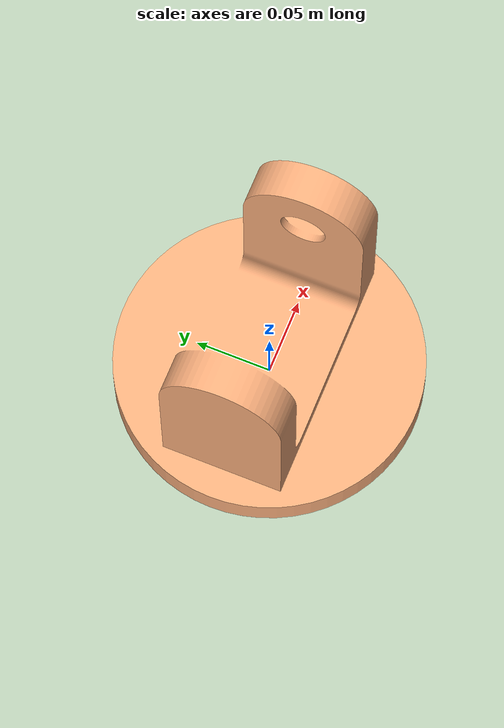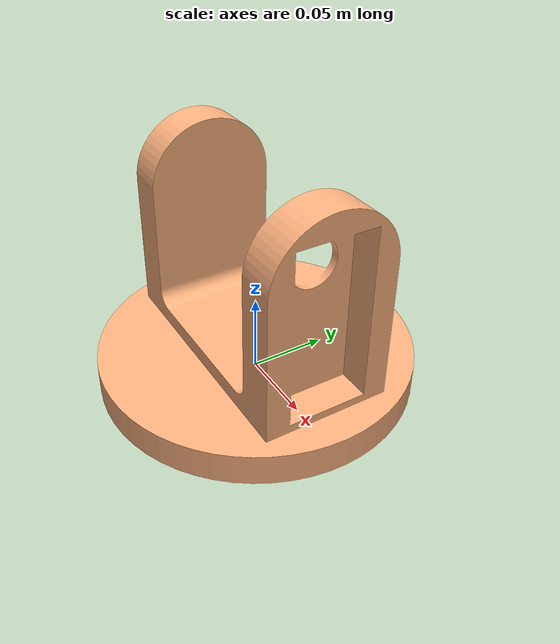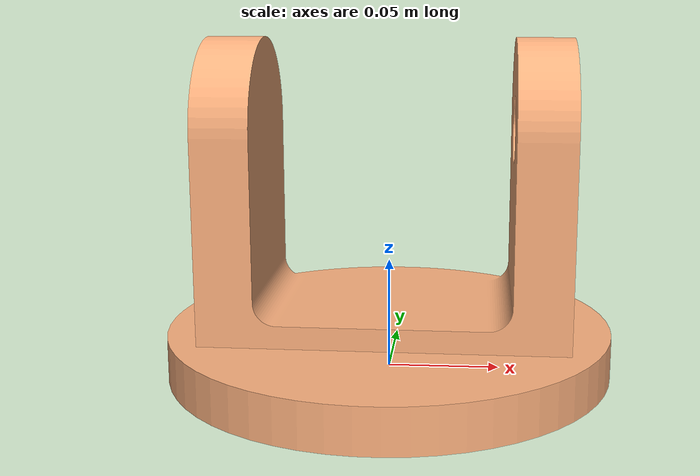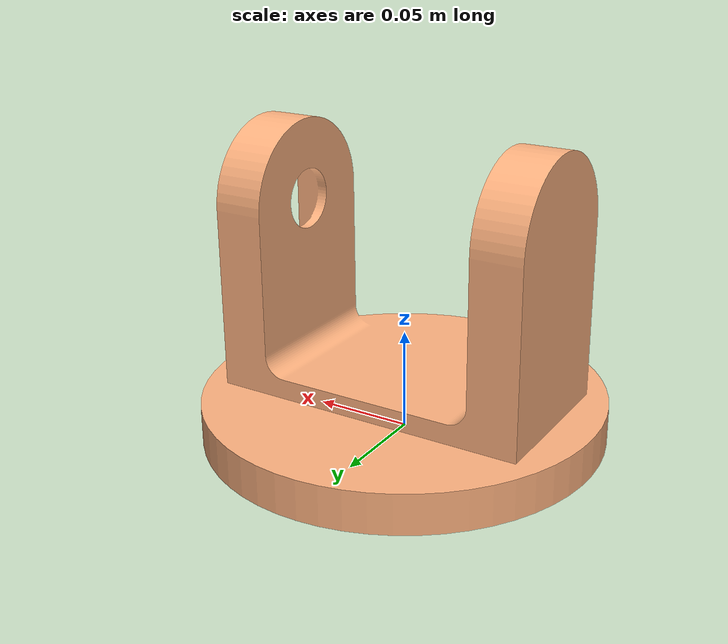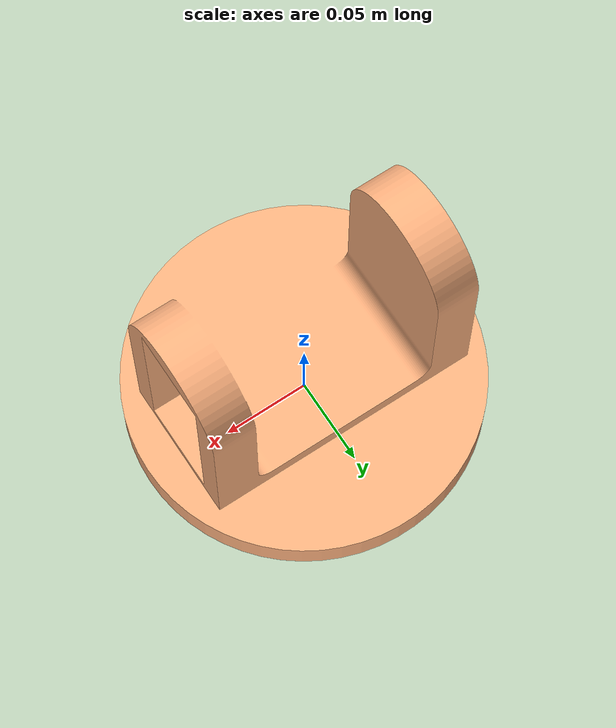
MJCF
<mujoco>
    <compiler meshdir="../meshes/Shoulder" angle="radian" />

    <include file="materials.xml" />

    <default>
        <default class="visual">
            <geom pos="0.0 0.0 0.0" euler="0 0 0" />
        </default>
    </default>

    <asset>
        <mesh name="ShoulderJoint" file="ShoulderJoint.stl" scale="2.0 2.0 2.0" />
    </asset>

    <worldbody>
        <body name="Shoulder" pos="0 0 0.0">
            <geom type="mesh" mesh="ShoulderJoint" class="visual" material="brown" mass="0.2" contype="1" conaffinity="1"  />

        </body>
    </worldbody>
</mujoco>

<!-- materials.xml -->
<mujoco>

    <default>
        <mesh scale="0.001 0.001 0.001" />
        <geom contype="0" conaffinity="0" mass="0" />
    </default>

    <asset>
        <texture type="skybox" builtin="gradient" rgb1=".3 .5 .7" rgb2="1 1 1" width="32" height="512"/>
        <material name="blue" rgba="0.0 0.3 0.7 0.9" />
        <material name="black" rgba="0.2 0.2 0.2 0.9" />
        <material name="deep_black" rgba="0.1 0.1 0.1 0.9" />
        <material name="silver" rgba="0.5 0.5 0.5 1" />
        <material name="brown" rgba="1 0.7 0.5 0.9" />
    </asset>
</mujoco>
